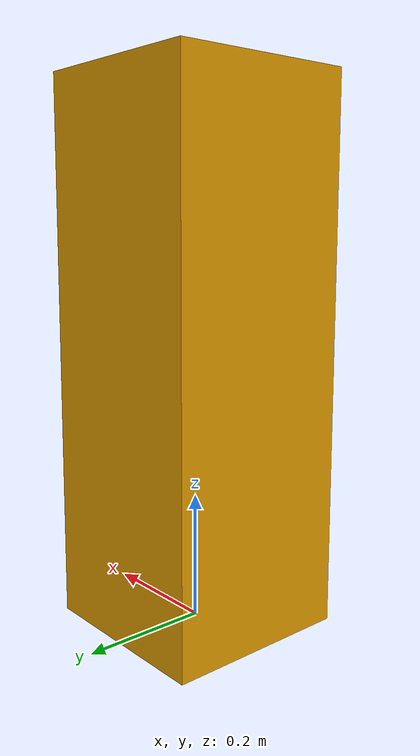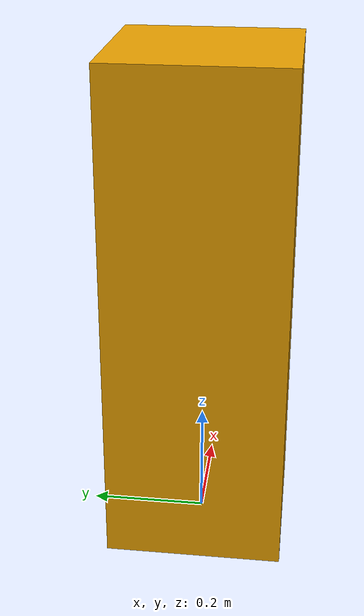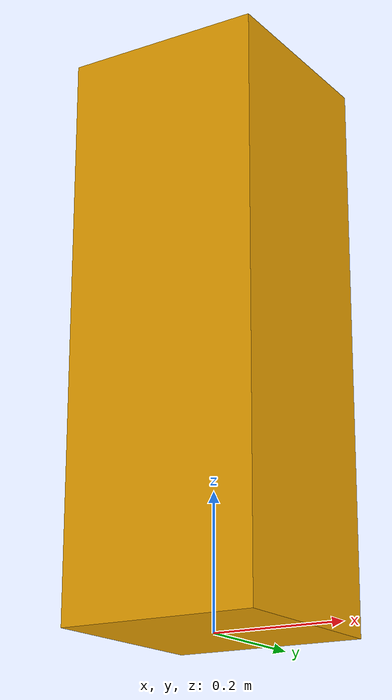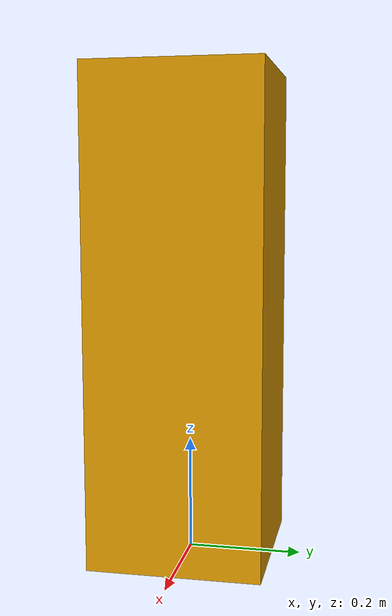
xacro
<?xml version="1.0"?>
<robot
     xmlns:xacro="http://www.ros.org/wiki/xacro" name="pedestal">
     <!-- define the base-link origin to lie at floor level, between the drive wheels-->
     <!--main body is a simple box; origin is a center of box-->
    <xacro:property name="bodylen" value="0.3" />
    <xacro:property name="bodywidth" value="0.3" />
    <xacro:property name="bodyheight" value="0.85" />

    <!--link name="baxter_pedestal"-->
    <link name="base_link">
        <visual>
            <geometry>
                <box size="${bodylen} ${bodywidth} ${bodyheight}"/>
            </geometry>
            <origin xyz="0 0 ${bodyheight/2}" rpy="0 0 0"/>
        </visual>
        <collision>
            <geometry>
                <box size="${bodylen} ${bodywidth} ${bodyheight-0.01}"/>
            </geometry>
            <origin xyz="0 0 ${bodyheight/2}" rpy="0 0 0"/>
        </collision>
    </link>

</robot>
